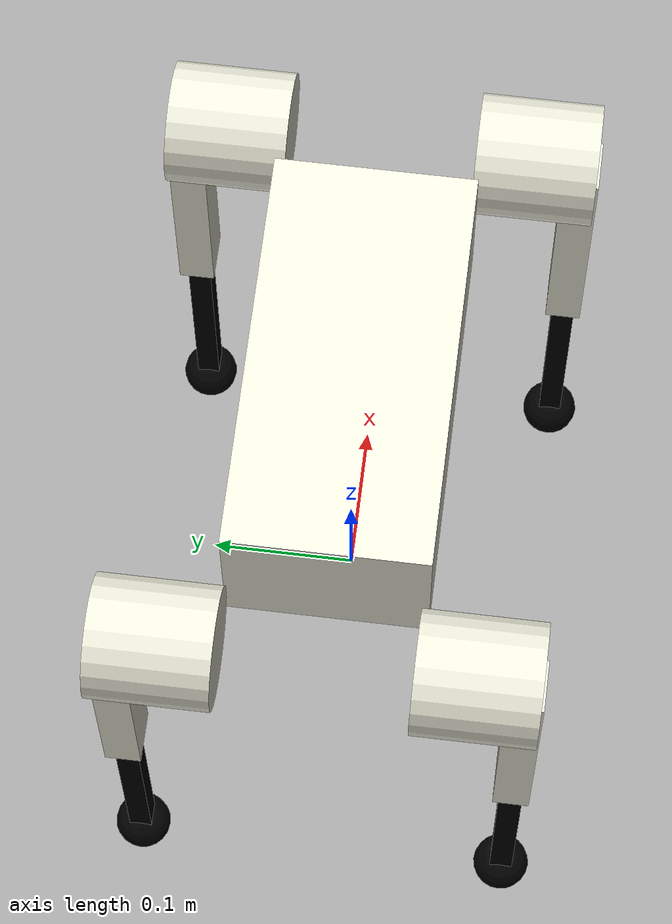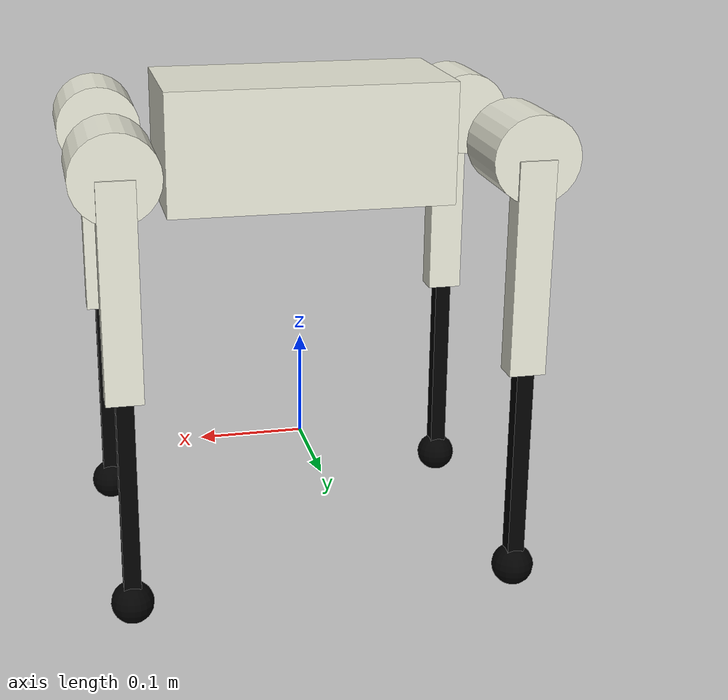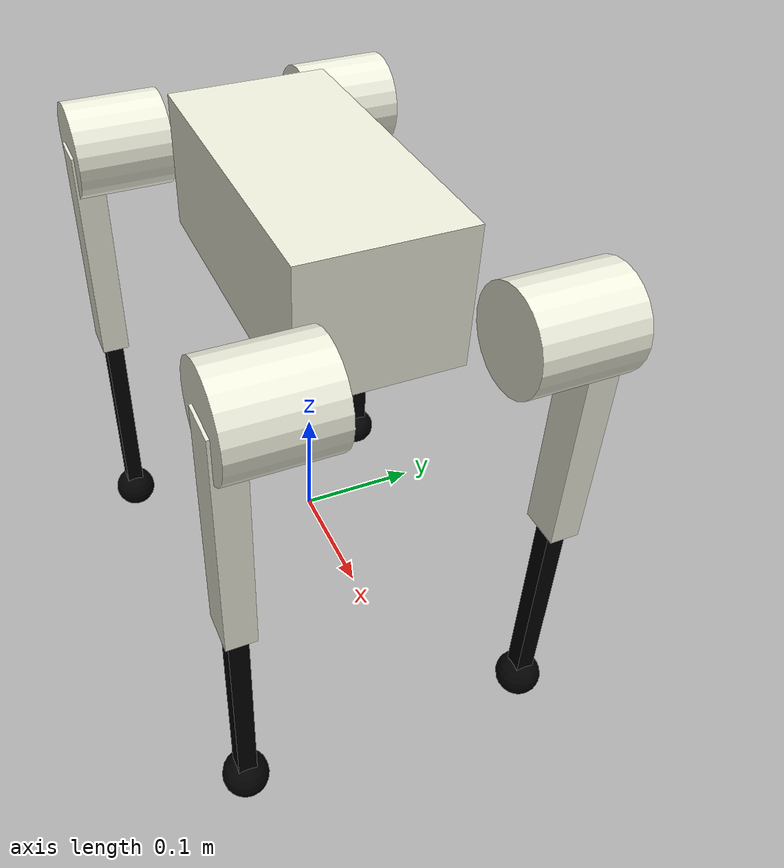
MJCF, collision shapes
<mujoco model="a1_description">
    <compiler angle="radian" meshdir="../meshes/" />
    <size njmax="500" nconmax="100" />

    <default>
        <geom contype="1" conaffinity="0" friction="0.6 0.3 0.3" rgba="0.5 0.6 0.7 1" margin="0.001" condim="6" solref="0.02 1" solimp="0.8 0.9 0.01" group="4"/>
        <joint damping="0.01" armature="0.01" frictionloss="0.2" solreflimit="0.01 1" solimplimit="0.9 0.99 0.01" />
        <default class="foot">
          <geom type="sphere" size="0.02" pos="0 0 -0.2" priority="1" solimp="0.015 1 0.02" condim="6"
            friction="0.8 0.02 0.01"/>
        </default>
        <default class="foot_site">
          <site type="sphere" size="0.02" pos="0 0 -0.2" rgba="0.5 0.5 0.5 0.0" />
        </default>
    </default>

    <asset>
        <mesh name="trunk" file="trunk.stl" />
        <mesh name="hip" file="hip.stl" />
        <mesh name="thigh_mirror" file="thigh_mirror.stl" />
        <mesh name="calf" file="calf.stl" />
        <mesh name="thigh" file="thigh.stl" />
    </asset>

    <worldbody>
        <body name="trunk" pos="0 0 0.3">
            <inertial pos="0.0127283 0.00218554 0.000514891" quat="0.00186575 0.711506 0.000389649 0.702677" mass="4.714" diaginertia="0.0648213 0.0565803 0.0169323" />
            <geom type="mesh" contype="0" conaffinity="0" group="1" rgba="0.913725 0.913725 0.847059 1" mesh="trunk" />
            <geom size="0.1335 0.066 0.057" type="box" rgba="0.913725 0.913725 0.847059 0" />
            <geom size="0.0005 0.0005 0.0005" type="box" contype="0" conaffinity="0" group="1" rgba="0.8 0 0 0" />
            <geom size="0.0005 0.0005 0.0005" type="box" rgba="0.8 0 0 0" />
            <site name="imu" pos="0 0 0"/>

            <body name="FR_hip" pos="0.183 -0.047 0">
                <inertial pos="-0.003311 -0.000635 3.1e-05" quat="0.507528 0.506268 0.491507 0.494499" mass="0.696" diaginertia="0.000807752 0.00055293 0.000468983" />
                <joint name="FR_hip_joint" pos="0 0 0" axis="1 0 0" limited="true" range="-0.802851 0.802851" />
                <geom quat="0 1 0 0" type="mesh" contype="0" conaffinity="0" group="1" rgba="0.913725 0.913725 0.847059 1" mesh="hip" />
                <geom size="0.04 0.04" pos="0 -0.055 0" quat="0.707107 0.707107 0 0" type="cylinder" rgba="0.913725 0.913725 0.847059 0" />
                <body name="FR_thigh" pos="0 -0.08505 0">
                    <inertial pos="-0.003237 0.022327 -0.027326" quat="0.999125 -0.00256393 -0.0409531 -0.00806091" mass="1.013" diaginertia="0.00555739 0.00513936 0.00133944" />
                    <joint name="FR_thigh_joint" pos="0 0 0" axis="0 1 0" limited="true" range="-1.0472 4.18879" />
                    <geom type="mesh" contype="0" conaffinity="0" group="1" rgba="0.913725 0.913725 0.847059 1" mesh="thigh_mirror" />
                    <geom size="0.1 0.01225 0.017" pos="0 0 -0.1" quat="0.707107 0 0.707107 0" type="box" rgba="0.913725 0.913725 0.847059 0" />
                    <body name="FR_calf" pos="0 0 -0.2">
                        <inertial pos="0.00472659 0 -0.131975" quat="0.706886 0.017653 0.017653 0.706886" mass="0.226" diaginertia="0.00340344 0.00339393 3.54834e-05" />
                        <joint name="FR_calf_joint" pos="0 0 0" axis="0 1 0" limited="true" range="-2.69653 -0.916298" />
                        <geom type="mesh" contype="0" conaffinity="0" group="1" rgba="0 0 0 1" mesh="calf" />
                        <geom size="0.1 0.008 0.008" pos="0 0 -0.1" quat="0.707107 0 0.707107 0" type="box" rgba="0 0 0 0" />
                        <geom size="0.01" pos="0 0 -0.2" contype="0" conaffinity="0" group="1" rgba="0 0 0 1" />
                        <geom size="0.02" pos="0 0 -0.2" rgba="0 0 0 1" />
                        <geom class="foot"/>
                        <site name="FR_foot_site" class="foot_site"/>
                    </body>
                </body>
            </body>
            <body name="FL_hip" pos="0.183 0.047 0">
                <inertial pos="-0.003311 0.000635 3.1e-05" quat="0.494499 0.491507 0.506268 0.507528" mass="0.696" diaginertia="0.000807752 0.00055293 0.000468983" />
                <joint name="FL_hip_joint" pos="0 0 0" axis="1 0 0" limited="true" range="-0.802851 0.802851" />
                <geom type="mesh" contype="0" conaffinity="0" group="1" rgba="0.913725 0.913725 0.847059 1" mesh="hip" />
                <geom size="0.04 0.04" pos="0 0.055 0" quat="0.707107 0.707107 0 0" type="cylinder" rgba="0.913725 0.913725 0.847059 0" />
                <body name="FL_thigh" pos="0 0.08505 0">
                    <inertial pos="-0.003237 -0.022327 -0.027326" quat="0.999125 0.00256393 -0.0409531 0.00806091" mass="1.013" diaginertia="0.00555739 0.00513936 0.00133944" />
                    <joint name="FL_thigh_joint" pos="0 0 0" axis="0 1 0" limited="true" range="-1.0472 4.18879" />
                    <geom type="mesh" contype="0" conaffinity="0" group="1" rgba="0.913725 0.913725 0.847059 1" mesh="thigh" />
                    <geom size="0.1 0.01225 0.017" pos="0 0 -0.1" quat="0.707107 0 0.707107 0" type="box" rgba="0.913725 0.913725 0.847059 0" />
                    <body name="FL_calf" pos="0 0 -0.2">
                        <inertial pos="0.00472659 0 -0.131975" quat="0.706886 0.017653 0.017653 0.706886" mass="0.226" diaginertia="0.00340344 0.00339393 3.54834e-05" />
                        <joint name="FL_calf_joint" pos="0 0 0" axis="0 1 0" limited="true" range="-2.69653 -0.916298" />
                        <geom type="mesh" contype="0" conaffinity="0" group="1" rgba="0 0 0 1" mesh="calf" />
                        <geom size="0.1 0.008 0.008" pos="0 0 -0.1" quat="0.707107 0 0.707107 0" type="box" rgba="0 0 0 0" />
                        <geom size="0.01" pos="0 0 -0.2" contype="0" conaffinity="0" group="1" rgba="0 0 0 1" />
                        <geom size="0.02" pos="0 0 -0.2" rgba="0 0 0 1" />
                        <geom class="foot"/>
                        <site name="FL_foot_site" class="foot_site"/>
                    </body>
                </body>
            </body>
            <body name="RR_hip" pos="-0.183 -0.047 0">
                <inertial pos="0.003311 -0.000635 3.1e-05" quat="0.491507 0.494499 0.507528 0.506268" mass="0.696" diaginertia="0.000807752 0.00055293 0.000468983" />
                <joint name="RR_hip_joint" pos="0 0 0" axis="1 0 0" limited="true" range="-0.802851 0.802851" />
                <geom quat="0 0 0 -1" type="mesh" contype="0" conaffinity="0" group="1" rgba="0.913725 0.913725 0.847059 1" mesh="hip" />
                <geom size="0.04 0.04" pos="0 -0.055 0" quat="0.707107 0.707107 0 0" type="cylinder" rgba="0.913725 0.913725 0.847059 0" />
                <body name="RR_thigh" pos="0 -0.08505 0">
                    <inertial pos="-0.003237 0.022327 -0.027326" quat="0.999125 -0.00256393 -0.0409531 -0.00806091" mass="1.013" diaginertia="0.00555739 0.00513936 0.00133944" />
                    <joint name="RR_thigh_joint" pos="0 0 0" axis="0 1 0" limited="true" range="-1.0472 4.18879" />
                    <geom type="mesh" contype="0" conaffinity="0" group="1" rgba="0.913725 0.913725 0.847059 1" mesh="thigh_mirror" />
                    <geom size="0.1 0.01225 0.017" pos="0 0 -0.1" quat="0.707107 0 0.707107 0" type="box" rgba="0.913725 0.913725 0.847059 0" />
                    <body name="RR_calf" pos="0 0 -0.2">
                        <inertial pos="0.00472659 0 -0.131975" quat="0.706886 0.017653 0.017653 0.706886" mass="0.226" diaginertia="0.00340344 0.00339393 3.54834e-05" />
                        <joint name="RR_calf_joint" pos="0 0 0" axis="0 1 0" limited="true" range="-2.69653 -0.916298" />
                        <geom type="mesh" contype="0" conaffinity="0" group="1" rgba="0 0 0 1" mesh="calf" />
                        <geom size="0.1 0.008 0.008" pos="0 0 -0.1" quat="0.707107 0 0.707107 0" type="box" rgba="0 0 0 0" />
                        <geom size="0.01" pos="0 0 -0.2" contype="0" conaffinity="0" group="1" rgba="0 0 0 1" />
                        <geom size="0.02" pos="0 0 -0.2" rgba="0 0 0 1" />
                        <geom class="foot"/>
                        <site name="RR_foot_site" class="foot_site"/>
                    </body>
                </body>
            </body>
            <body name="RL_hip" pos="-0.183 0.047 0">
                <inertial pos="0.003311 0.000635 3.1e-05" quat="0.506268 0.507528 0.494499 0.491507" mass="0.696" diaginertia="0.000807752 0.00055293 0.000468983" />
                <joint name="RL_hip_joint" pos="0 0 0" axis="1 0 0" limited="true" range="-0.802851 0.802851" />
                <geom quat="0 0 1 0" type="mesh" contype="0" conaffinity="0" group="1" rgba="0.913725 0.913725 0.847059 1" mesh="hip" />
                <geom size="0.04 0.04" pos="0 0.055 0" quat="0.707107 0.707107 0 0" type="cylinder" rgba="0.913725 0.913725 0.847059 0" />
                <body name="RL_thigh" pos="0 0.08505 0">
                    <inertial pos="-0.003237 -0.022327 -0.027326" quat="0.999125 0.00256393 -0.0409531 0.00806091" mass="1.013" diaginertia="0.00555739 0.00513936 0.00133944" />
                    <joint name="RL_thigh_joint" pos="0 0 0" axis="0 1 0" limited="true" range="-1.0472 4.18879" />
                    <geom type="mesh" contype="0" conaffinity="0" group="1" rgba="0.913725 0.913725 0.847059 1" mesh="thigh" />
                    <geom size="0.1 0.01225 0.017" pos="0 0 -0.1" quat="0.707107 0 0.707107 0" type="box" rgba="0.913725 0.913725 0.847059 0" />
                    <body name="RL_calf" pos="0 0 -0.2">
                        <inertial pos="0.00472659 0 -0.131975" quat="0.706886 0.017653 0.017653 0.706886" mass="0.226" diaginertia="0.00340344 0.00339393 3.54834e-05" />
                        <joint name="RL_calf_joint" pos="0 0 0" axis="0 1 0" limited="true" range="-2.69653 -0.916298" />
                        <geom type="mesh" contype="0" conaffinity="0" group="1" rgba="0 0 0 1" mesh="calf" />
                        <geom size="0.1 0.008 0.008" pos="0 0 -0.1" quat="0.707107 0 0.707107 0" type="box" rgba="0 0 0 0" />
                        <geom size="0.01" pos="0 0 -0.2" contype="0" conaffinity="0" group="1" rgba="0 0 0 1" />
                        <geom size="0.02" pos="0 0 -0.2" rgba="0 0 0 1" />
                        <geom class="foot"/>
                        <site name="RL_foot_site" class="foot_site"/>
                    </body>
                </body>
            </body>
        </body>
    </worldbody>

    <actuator>
        <motor name="FR_hip"    gear="1" joint="FR_hip_joint"   ctrllimited="true" ctrlrange="-33.5 33.5"/>
        <motor name="FR_thigh"  gear="1" joint="FR_thigh_joint" ctrllimited="true" ctrlrange="-33.5 33.5"/>
        <motor name="FR_calf"   gear="1" joint="FR_calf_joint"  ctrllimited="true" ctrlrange="-33.5 33.5"/>
        <motor name="FL_hip"    gear="1" joint="FL_hip_joint"   ctrllimited="true" ctrlrange="-33.5 33.5"/>
        <motor name="FL_thigh"  gear="1" joint="FL_thigh_joint" ctrllimited="true" ctrlrange="-33.5 33.5"/>
        <motor name="FL_calf"   gear="1" joint="FL_calf_joint"  ctrllimited="true" ctrlrange="-33.5 33.5"/>
        <motor name="RR_hip"    gear="1" joint="RR_hip_joint"   ctrllimited="true" ctrlrange="-33.5 33.5"/>
        <motor name="RR_thigh"  gear="1" joint="RR_thigh_joint" ctrllimited="true" ctrlrange="-33.5 33.5"/>
        <motor name="RR_calf"   gear="1" joint="RR_calf_joint"  ctrllimited="true" ctrlrange="-33.5 33.5"/>
        <motor name="RL_hip"    gear="1" joint="RL_hip_joint"   ctrllimited="true" ctrlrange="-33.5 33.5"/>
        <motor name="RL_thigh"  gear="1" joint="RL_thigh_joint" ctrllimited="true" ctrlrange="-33.5 33.5"/>
        <motor name="RL_calf"   gear="1" joint="RL_calf_joint"  ctrllimited="true" ctrlrange="-33.5 33.5"/>
    </actuator>

    <sensor>
        <accelerometer name="accelerometer" site="imu"/>
        <gyro name="sensor_gyro" site="imu"/>
        <velocimeter name="velocimeter" site="imu"/>
        <framequat name="framequat" objtype='site' objname="imu"/>
        <touch name="FR_foot_touch" site="FR_foot_site" />
        <touch name="FL_foot_touch" site="FL_foot_site" />
        <touch name="RR_foot_touch" site="RR_foot_site" />
        <touch name="RL_foot_touch" site="RL_foot_site" />
    </sensor>
</mujoco>
